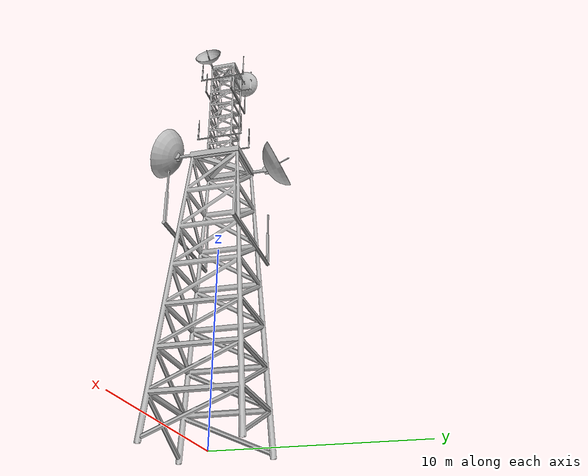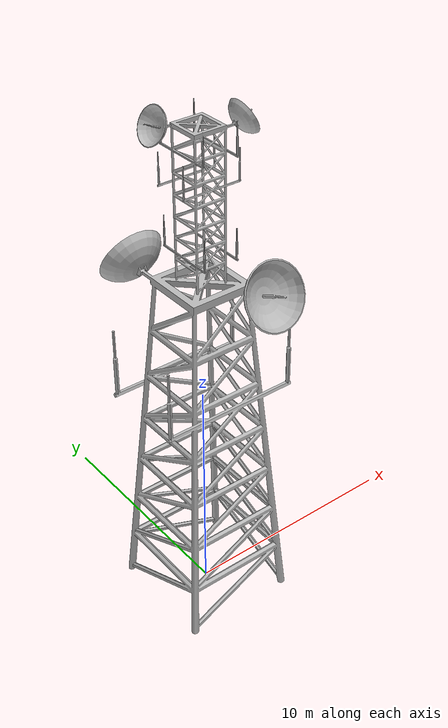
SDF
<?xml version="1.0" ?>
<sdf version="1.6">
  <model name="radio_tower">
    <static>true</static>
    <link name="link">
      <collision name="collision">
        <geometry>
          <mesh>
            <scale>0.5 0.5 0.5 </scale>
            <uri>model://radio_tower/meshes/radio_tower.dae</uri>
          </mesh>
        </geometry>
      </collision>
      <visual name="visual">
        <geometry>
          <mesh>
            <scale>0.5 0.5 0.5 </scale>
            <uri>model://radio_tower/meshes/radio_tower.dae</uri>
          </mesh>
        </geometry>
      </visual>
    </link>
  </model>
</sdf>
